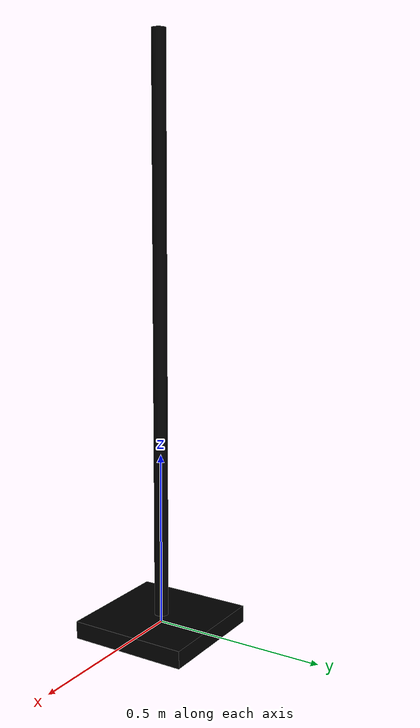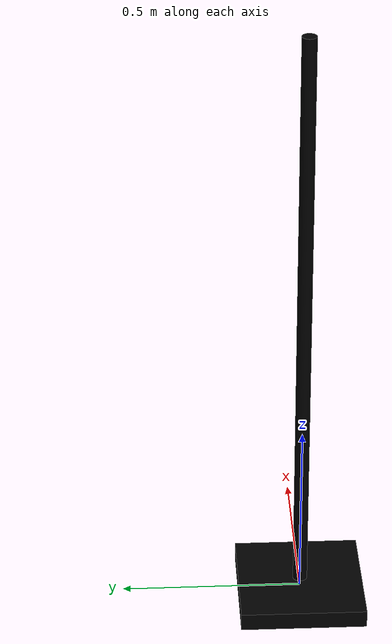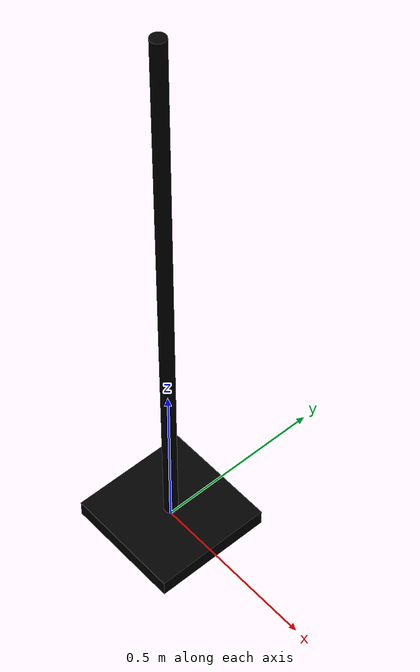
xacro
<?xml version="1.0"?>
<robot name="pole2"
       xmlns:xi="http://www.w3.org/2001/XInclude"
       xmlns:gazebo="http://playerstage.sourceforge.net/gazebo/xmlschema/#gz"
       xmlns:model="http://playerstage.sourceforge.net/gazebo/xmlschema/#model"
       xmlns:sensor="http://playerstage.sourceforge.net/gazebo/xmlschema/#sensor"
       xmlns:body="http://playerstage.sourceforge.net/gazebo/xmlschema/#body"
       xmlns:geom="http://playerstage.sourceforge.net/gazebo/xmlschema/#geom"
       xmlns:joint="http://playerstage.sourceforge.net/gazebo/xmlschema/#joint"
       xmlns:interface="http://playerstage.sourceforge.net/gazebo/xmlschema/#interface"
       xmlns:rendering="http://playerstage.sourceforge.net/gazebo/xmlschema/#rendering"
       xmlns:renderable="http://playerstage.sourceforge.net/gazebo/xmlschema/#renderable"
       xmlns:controller="http://playerstage.sourceforge.net/gazebo/xmlschema/#controller"
       xmlns:physics="http://playerstage.sourceforge.net/gazebo/xmlschema/#physics">

  <property name="pole2_height" value="1.7" />
  <property name="pole2_width"  value="0.35" />
  <property name="pole2_depth"  value="0.35" />
  <property name="pole2_radius" value="0.02" />
  <property name="pole2_x"      value="0.0" />
  <property name="pole2_y"      value="0.0" />
  <property name="pole2_z"      value="0.0" />

  <property name="pole2_base_color" value="0 0 0 1" />
  <property name="pole2_color" value="0 0 0 1" />

  <property name="pole2_base_thickness" value="0.05"/>

  <property name="M_PI" value="3.1415926535897931" />

  <link name="pole2_base_link">
    <inertial>
      <mass value="1.0" />
      <origin xyz="${pole2_x} ${pole2_y} ${pole2_z}" />
      <inertia ixx="1" ixy="0"  ixz="0"
               iyy="1" iyz="0"
               izz="1" />
    </inertial>
    <visual>
      <origin xyz="${pole2_x} ${pole2_y} ${pole2_z}" />
      <geometry>
        <box size="${pole2_width} ${pole2_depth} ${pole2_base_thickness}" />
      </geometry>
      <material name="pole2_base_blue">
        <color rgba="${pole2_base_color}"/>
      </material>
    </visual>
    <collision>
      <origin xyz="${pole2_x} ${pole2_y} ${pole2_z}" />
      <geometry>
        <box size="${pole2_width} ${pole2_depth} ${pole2_base_thickness}" />
      </geometry>
    </collision>
  </link>
  <gazebo reference="pole2_base_link">
    <material>Gazebo/LightWood</material>
    <mu1>50.0</mu1>
    <mu2>50.0</mu2>
    <kp>1000000.0</kp>
    <kd>1.0</kd>
  </gazebo>

  <joint name="pole2_joint" type="fixed" >
    <parent link="pole2_base_link" />
    <origin xyz="0 0 ${pole2_base_thickness}" rpy="0 0 0" />
    <child link="pole2_link" />
  </joint>
  <link name="pole2_link">
    <inertial>
      <mass value="1.0" />
      <origin xyz="0 0 ${-pole2_height/2}" />
      <inertia ixx="0.1" ixy="0"  ixz="0"
               iyy="0.1" iyz="0"
               izz="0.01" />
    </inertial>
    <visual>
      <origin xyz="0.0 0.0 ${+pole2_height/2-pole2_base_thickness}" rpy="0 0 0" />
      <geometry>
        <cylinder radius="${pole2_radius}" length="${pole2_height-pole2_base_thickness}" />
      </geometry>
      <material name="pole2_blue">
        <color rgba="${pole2_color}"/>
      </material>
    </visual>

    <collision>
      <origin xyz="0.0 0.0 ${+pole2_height/2-pole2_base_thickness}" rpy="0.0 0.0 0.0" />
      <geometry>
        <cylinder radius="${pole2_radius}" length="${pole2_height-pole2_base_thickness}" />
      </geometry>
    </collision>
  </link>
  <gazebo reference="pole2_link">
    <material>Gazebo/Gray</material>
    <mu1>1000.0</mu1>
    <mu2>1000.0</mu2>
    <kp>10000000.0</kp>
    <kd>1.0</kd>
    <selfCollide>true</selfCollide>
  </gazebo>

</robot>
